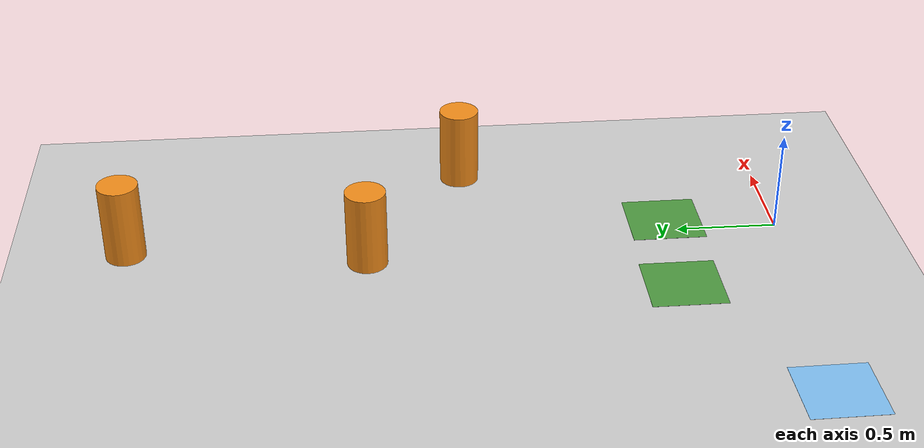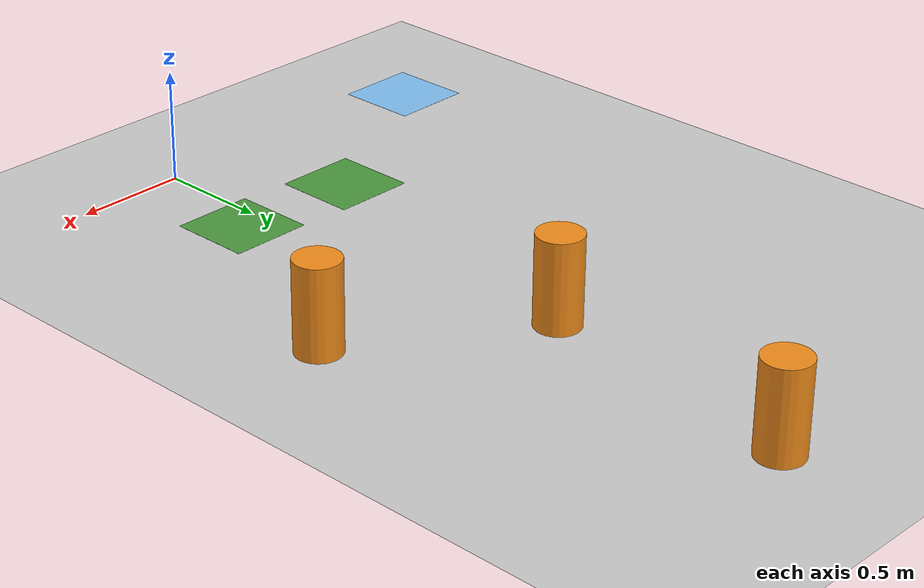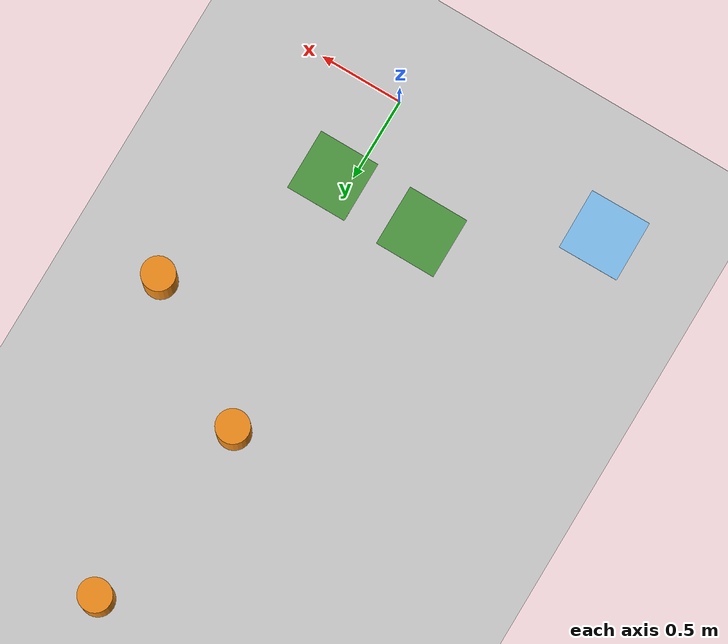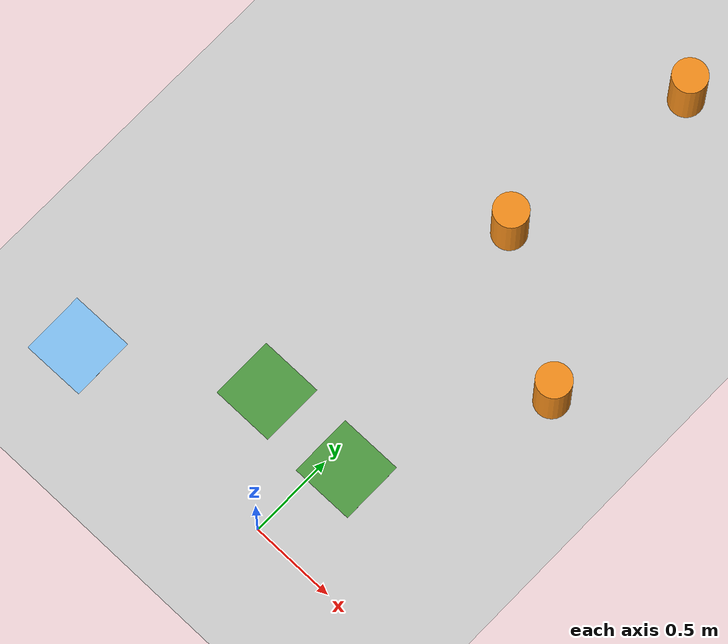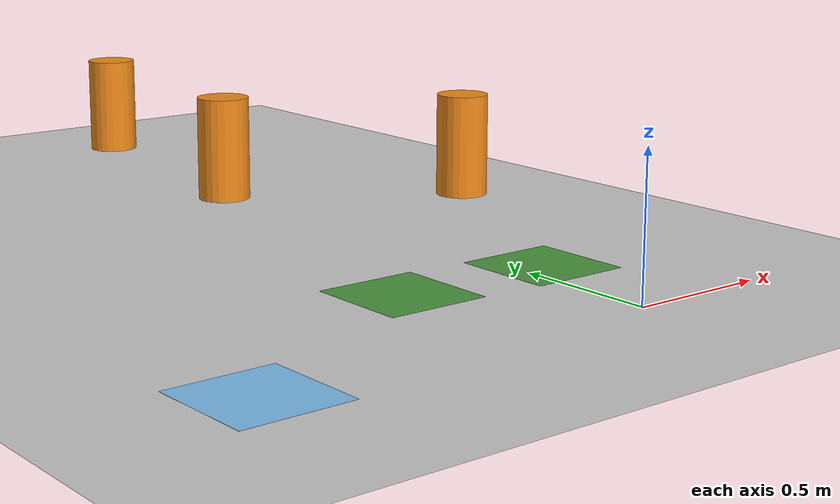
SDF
<sdf version="1.6">
 <world name="default">
  <plugin name="ros_link_attacher_plugin" filename="libgazebo_ros_link_attacher.so"/>
  <light name="sun" type="directional">
   <pose>0 0 10 0 -0 0</pose>
   <diffuse>0.8 0.8 0.8 1</diffuse>
   <specular>0.1 0.1 0.1 1</specular>
   <attenuation>
    <range>1000</range>
    <constant>0.9</constant>
    <linear>0.01</linear>
    <quadratic>0.001</quadratic>
   </attenuation>
   <direction>-0.5 0.5 -1</direction>
  </light>
  <model name="ground_plane">
   <static>1</static>
   <link name="link">
    <collision name="collision">
     <geometry><plane><normal>0 0 1</normal><size>100 100</size></plane></geometry>
     <surface><friction><ode><mu>100</mu><mu2>50</mu2></ode></friction></surface>
    </collision>
    <visual name="visual">
     <cast_shadows>0</cast_shadows>
     <geometry><plane><normal>0 0 1</normal><size>100 100</size></plane></geometry>
     <material>
      <script><uri>file://media/materials/scripts/gazebo.material</uri><name>Gazebo/Grey</name></script>
     </material>
    </visual>
   </link>
  </model>
  <gravity>0 0 -9.8</gravity>
  <magnetic_field>6e-06 2.3e-05 -4.2e-05</magnetic_field>
  <atmosphere type="adiabatic"/>
  <physics name="default_physics" default="0" type="ode">
   <max_step_size>0.001</max_step_size>
   <real_time_factor>1</real_time_factor>
   <real_time_update_rate>1000</real_time_update_rate>
  </physics>
  <scene><ambient>0.4 0.4 0.4 1</ambient><background>0.7 0.7 0.7 1</background><shadows>1</shadows></scene>
  <spherical_coordinates>
   <surface_model>EARTH_WGS84</surface_model>
   <latitude_deg>0</latitude_deg>
   <longitude_deg>0</longitude_deg>
   <elevation>0</elevation>
   <heading_deg>0</heading_deg>
  </spherical_coordinates>
  <model name="cylinder_0">
   <pose>-0.164714 2.06831 0.199991 0 -0 1e-06</pose>
   <link name="link">
    <inertial>
     <mass>1</mass>
     <inertia><ixx>0.145833</ixx><ixy>0</ixy><ixz>0</ixz><iyy>0.145833</iyy><iyz>0</iyz><izz>0.125</izz></inertia>
    </inertial>
    <collision name="collision">
     <geometry><cylinder><radius>0.1</radius><length>0.4</length></cylinder></geometry>
    </collision>
    <visual name="visual">
     <geometry><cylinder><radius>0.1</radius><length>0.4</length></cylinder></geometry>
     <material>
      <script><name>Gazebo/Orange</name><uri>file://media/materials/scripts/gazebo.material</uri></script>
     </material>
    </visual>
   </link>
  </model>
  <model name="cylinder_2">
   <pose>0.00604 3.25089 0.199991 0 -0 1e-06</pose>
   <link name="link">
    <inertial>
     <mass>1</mass>
     <inertia><ixx>0.145833</ixx><ixy>0</ixy><ixz>0</ixz><iyy>0.145833</iyy><iyz>0</iyz><izz>0.125</izz></inertia>
    </inertial>
    <collision name="collision">
     <geometry><cylinder><radius>0.1</radius><length>0.4</length></cylinder></geometry>
    </collision>
    <visual name="visual">
     <geometry><cylinder><radius>0.1</radius><length>0.4</length></cylinder></geometry>
     <material>
      <script><name>Gazebo/Orange</name><uri>file://media/materials/scripts/gazebo.material</uri></script>
     </material>
    </visual>
   </link>
  </model>
  <model name="cylinder_3">
   <pose>0.622835 1.55446 0.199991 0 -0 0</pose>
   <link name="link">
    <inertial>
     <mass>1</mass>
     <inertia><ixx>0.145833</ixx><ixy>0</ixy><ixz>0</ixz><iyy>0.145833</iyy><iyz>0</iyz><izz>0.125</izz></inertia>
    </inertial>
    <collision name="collision">
     <geometry><cylinder><radius>0.1</radius><length>0.4</length></cylinder></geometry>
    </collision>
    <visual name="visual">
     <geometry><cylinder><radius>0.1</radius><length>0.4</length></cylinder></geometry>
     <material>
      <script><name>Gazebo/Orange</name><uri>file://media/materials/scripts/gazebo.material</uri></script>
     </material>
    </visual>
   </link>
  </model>
  <audio><device>default</device></audio>
  <model name="loading_station_0">
   <link name="loading_station_0">
    <inertial>
     <mass>1</mass>
     <inertia>
      <ixx>0.166667</ixx>
      <ixy>0</ixy>
      <ixz>0</ixz>
      <iyy>0.166667</iyy>
      <iyz>0</iyz>
      <izz>0.166667</izz>
     </inertia>
    </inertial>
    <visual name="visual">
     <geometry><box><size>0.37 0.37 0.0005</size></box></geometry>
     <material>
      <script><name>Gazebo/Grass</name><uri>file://media/materials/scripts/gazebo.material</uri></script>
     </material>
    </visual>
    <collision name="collision">
     <geometry><box><size>0.37 0.37 0.0005</size></box></geometry>
     <surface>
      <friction>
       <ode><mu>1</mu><mu2>1</mu2><fdir1>0 0 0</fdir1><slip1>0</slip1><slip2>0</slip2></ode>
       <torsional>
        <coefficient>1</coefficient>
        <patch_radius>0</patch_radius>
        <surface_radius>0</surface_radius>
        <use_patch_radius>1</use_patch_radius>
        <ode><slip>0</slip></ode>
       </torsional>
      </friction>
      <bounce><restitution_coefficient>0</restitution_coefficient><threshold>1e+06</threshold></bounce>
      <contact>
       <collide_without_contact>0</collide_without_contact>
       <collide_without_contact_bitmask>1</collide_without_contact_bitmask>
       <collide_bitmask>1</collide_bitmask>
       <ode>
        <soft_cfm>0</soft_cfm>
        <soft_erp>0.2</soft_erp>
        <kp>1e+13</kp>
        <kd>1</kd>
        <max_vel>0.01</max_vel>
        <min_depth>0</min_depth>
       </ode>
       <bullet>
        <split_impulse>1</split_impulse>
        <split_impulse_penetration_threshold>-0.01</split_impulse_penetration_threshold>
        <soft_cfm>0</soft_cfm>
        <soft_erp>0.2</soft_erp>
        <kp>1e+13</kp>
        <kd>1</kd>
       </bullet>
      </contact>
     </surface>
    </collision>
   </link>
   <static>0</static>
   <pose>0.105666 0.549662 0.00025 0 -0 0.00283</pose>
  </model>
  <model name="loading_station_1">
   <link name="loading_station_1">
    <inertial>
     <mass>1</mass>
     <inertia>
      <ixx>0.166667</ixx>
      <ixy>0</ixy>
      <ixz>0</ixz>
      <iyy>0.166667</iyy>
      <iyz>0</iyz>
      <izz>0.166667</izz>
     </inertia>
    </inertial>
    <visual name="visual">
     <geometry><box><size>0.37 0.37 0.0005</size></box></geometry>
     <material>
      <script><name>Gazebo/Grass</name><uri>file://media/materials/scripts/gazebo.material</uri></script>
     </material>
    </visual>
    <collision name="collision">
     <geometry><box><size>0.37 0.37 0.0005</size></box></geometry>
     <surface>
      <friction>
       <ode><mu>1</mu><mu2>1</mu2><fdir1>0 0 0</fdir1><slip1>0</slip1><slip2>0</slip2></ode>
       <torsional>
        <coefficient>1</coefficient>
        <patch_radius>0</patch_radius>
        <surface_radius>0</surface_radius>
        <use_patch_radius>1</use_patch_radius>
        <ode><slip>0</slip></ode>
       </torsional>
      </friction>
      <bounce><restitution_coefficient>0</restitution_coefficient><threshold>1e+06</threshold></bounce>
      <contact>
       <collide_without_contact>0</collide_without_contact>
       <collide_without_contact_bitmask>1</collide_without_contact_bitmask>
       <collide_bitmask>1</collide_bitmask>
       <ode>
        <soft_cfm>0</soft_cfm>
        <soft_erp>0.2</soft_erp>
        <kp>1e+13</kp>
        <kd>1</kd>
        <max_vel>0.01</max_vel>
        <min_depth>0</min_depth>
       </ode>
       <bullet>
        <split_impulse>1</split_impulse>
        <split_impulse_penetration_threshold>-0.01</split_impulse_penetration_threshold>
        <soft_cfm>0</soft_cfm>
        <soft_erp>0.2</soft_erp>
        <kp>1e+13</kp>
        <kd>1</kd>
       </bullet>
      </contact>
     </surface>
    </collision>
   </link>
   <static>0</static>
   <pose>-0.482652 0.565771 0.00025 0 -0 -3.1e-05</pose>
  </model>
  <model name="unloading_station_0">
   <link name="unloading_station_0">
    <inertial>
     <mass>1</mass>
     <inertia>
      <ixx>0.166667</ixx>
      <ixy>0</ixy>
      <ixz>0</ixz>
      <iyy>0.166667</iyy>
      <iyz>0</iyz>
      <izz>0.166667</izz>
     </inertia>
    </inertial>
    <visual name="visual">
     <geometry><box><size>0.37 0.37 0.0005</size></box></geometry>
     <material>
      <script><name>Gazebo/SkyBlue</name><uri>file://media/materials/scripts/gazebo.material</uri></script>
     </material>
    </visual>
    <collision name="collision">
     <geometry><box><size>0.37 0.37 0.0005</size></box></geometry>
     <surface>
      <friction>
       <ode><mu>1</mu><mu2>1</mu2><fdir1>0 0 0</fdir1><slip1>0</slip1><slip2>0</slip2></ode>
       <torsional>
        <coefficient>1</coefficient>
        <patch_radius>0</patch_radius>
        <surface_radius>0</surface_radius>
        <use_patch_radius>1</use_patch_radius>
        <ode><slip>0</slip></ode>
       </torsional>
      </friction>
      <bounce><restitution_coefficient>0</restitution_coefficient><threshold>1e+06</threshold></bounce>
      <contact>
       <collide_without_contact>0</collide_without_contact>
       <collide_without_contact_bitmask>1</collide_without_contact_bitmask>
       <collide_bitmask>1</collide_bitmask>
       <ode>
        <soft_cfm>0</soft_cfm>
        <soft_erp>0.2</soft_erp>
        <kp>1e+13</kp>
        <kd>1</kd>
        <max_vel>0.01</max_vel>
        <min_depth>0</min_depth>
       </ode>
       <bullet>
        <split_impulse>1</split_impulse>
        <split_impulse_penetration_threshold>-0.01</split_impulse_penetration_threshold>
        <soft_cfm>0</soft_cfm>
        <soft_erp>0.2</soft_erp>
        <kp>1e+13</kp>
        <kd>1</kd>
       </bullet>
      </contact>
     </surface>
    </collision>
   </link>
   <static>0</static>
   <pose>-1.36841 0.058981 0.00025 0 -0 0.009867</pose>
  </model>
 </world>
</sdf>
